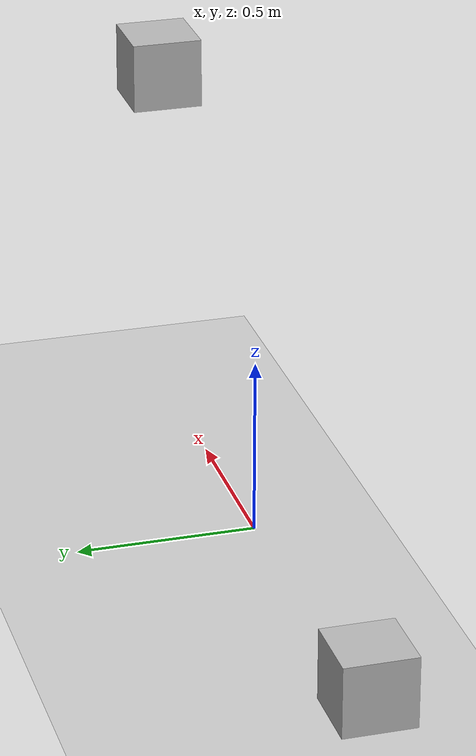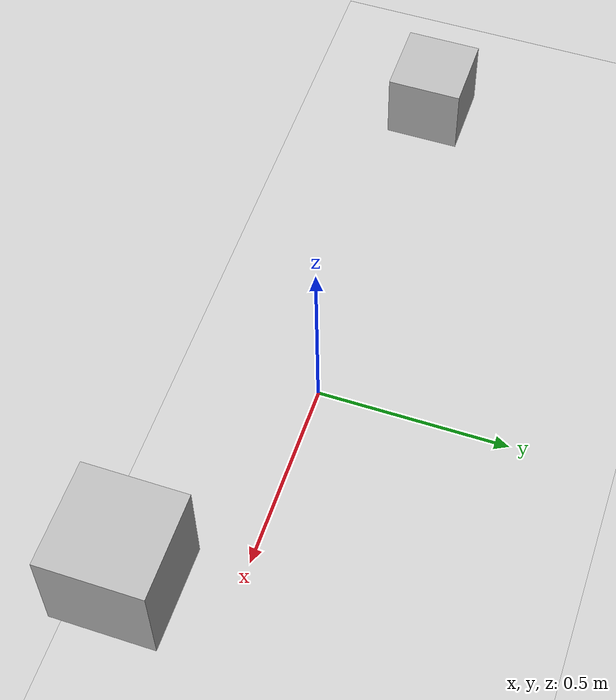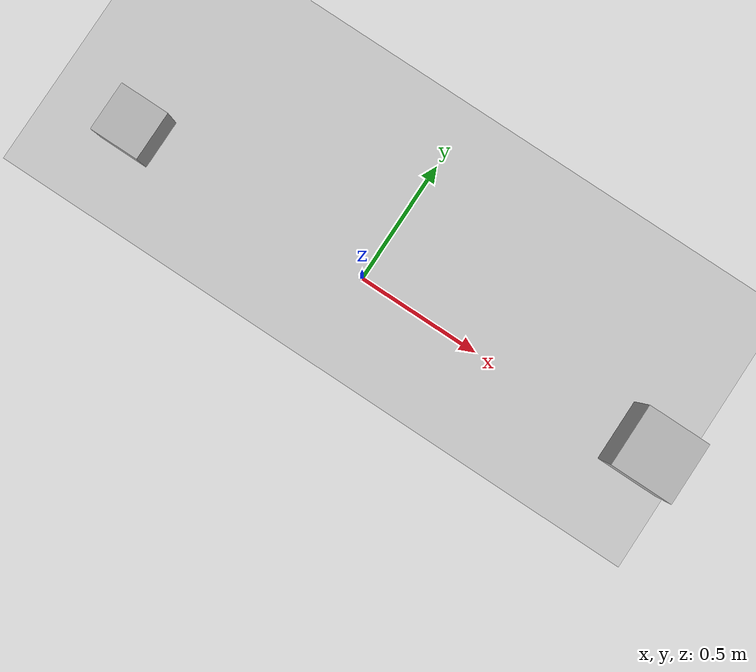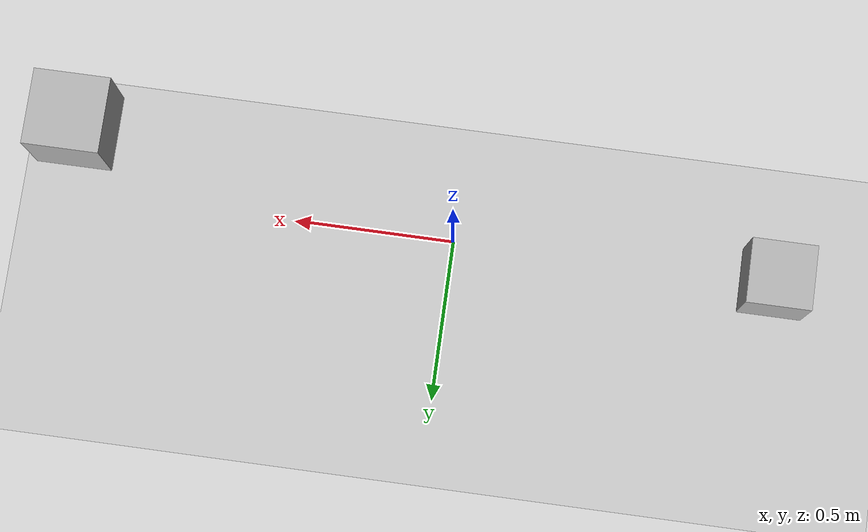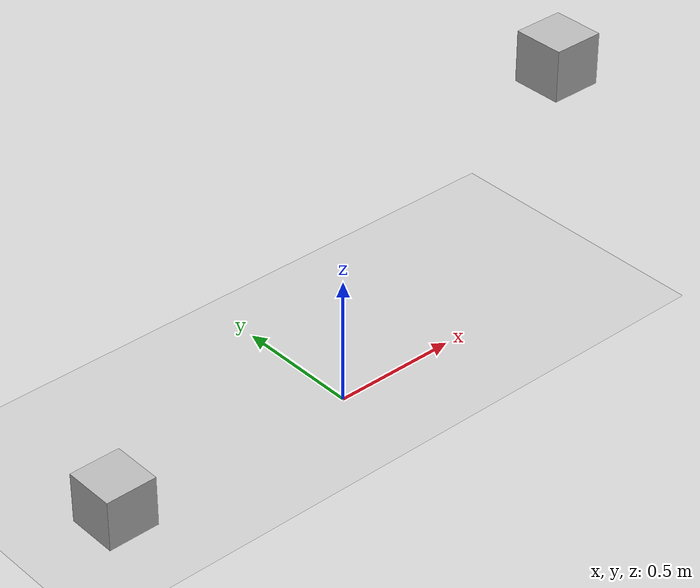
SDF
<?xml version="1.0"?>
<sdf version="1.4">
  <world name="default">

    <include>
      <uri>model://ground_plane</uri>
    </include>
    <include>
      <uri>model://sun</uri>
    </include>

    <model name="box1">
      <pose>1 0 1 0 0 0</pose>
      <link name="link">
        <visual name="vis">
          <geometry>
            <box>
              <size>0.2 0.2 0.2</size>
            </box>
          </geometry>
        </visual>
        <collision name="col">
          <geometry>
            <box>
              <size>0.2 0.2 0.2</size>
            </box>
          </geometry>
        </collision>
      </link>
    </model>

    <model name="box2">
      <pose>-1 0 0.1 0 0 0</pose>
      <link name="link">
        <visual name="vis">
          <geometry>
            <box>
              <size>0.2 0.2 0.2</size>
            </box>
          </geometry>
        </visual>
        <collision name="col">
          <geometry>
            <box>
              <size>0.2 0.2 0.2</size>
            </box>
          </geometry>
        </collision>
      </link>
    </model>

    <plugin name="minimum_distance_plugin" filename="libminimum_distance_plugin.so">

      <pair name="BoxTest">

        <from>
          <model name="box1">
            <link name="link">
              <collision>
                <geometry>
                  <box>
                    <size>0.2 0.2 0.2</size>
                  </box>
                </geometry>
              </collision>
            </link>
          </model>
        </from>

        <to>
          <model name="box2">
            <link name="link">
              <collision>
                <geometry>
                  <box>
                    <size>0.2 0.2 0.2</size>
                  </box>
                </geometry>
              </collision>
            </link>
          </model>
        </to>

        <range>100</range>

      </pair>

    </plugin>

  </world>
</sdf>
